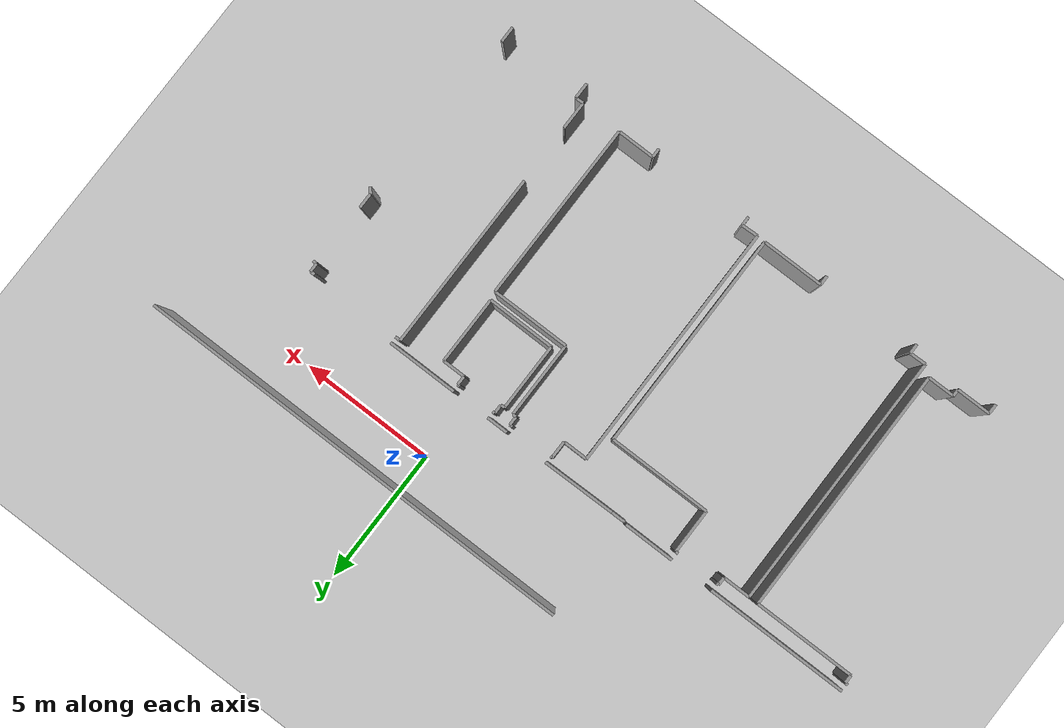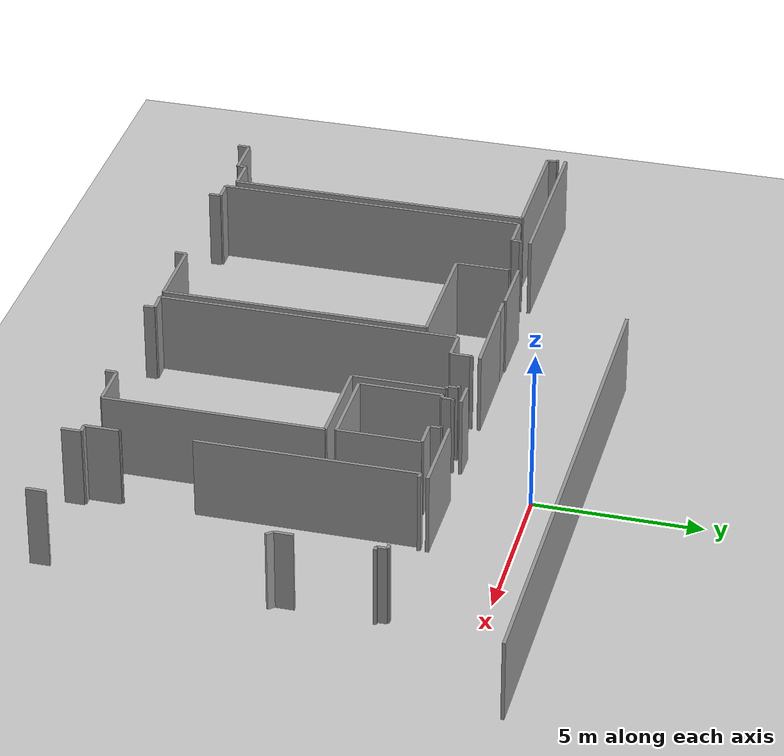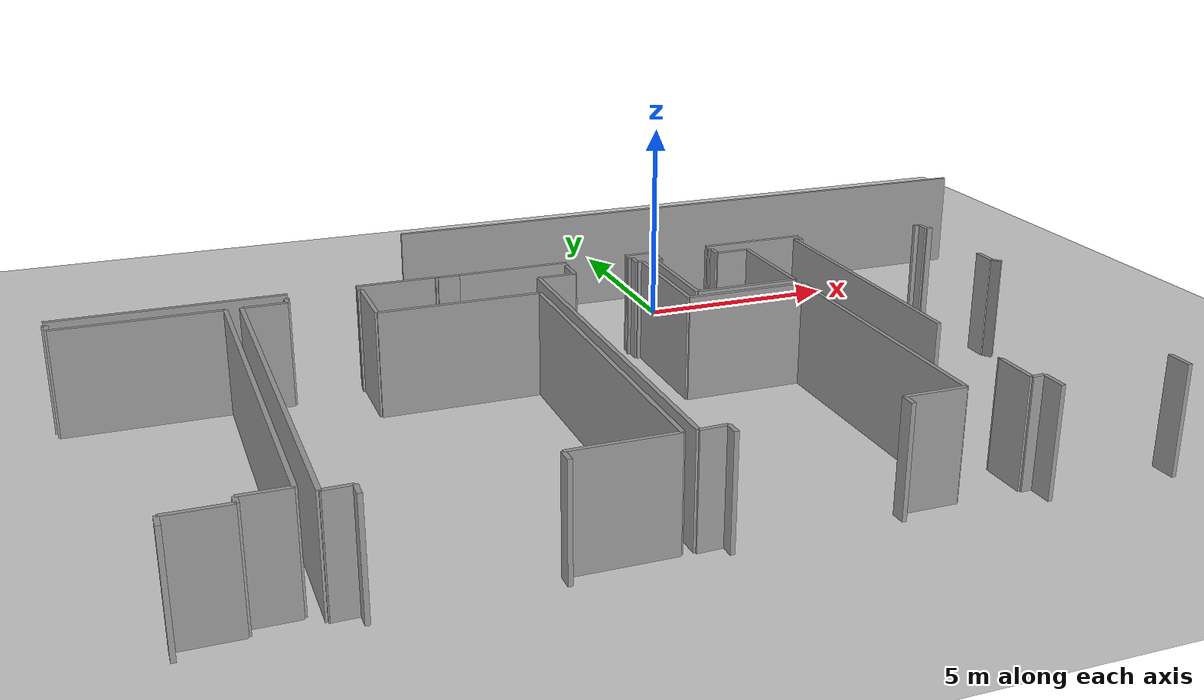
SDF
<sdf version="1.6">
 <world name="default">
  <model name="ground_plane">
   <static>1</static>
   <link name="link">
    <collision name="collision">
     <geometry><plane><normal>0 0 1</normal><size>100 100</size></plane></geometry>
     <surface><friction><ode><mu>100</mu><mu2>50</mu2></ode></friction></surface>
    </collision>
    <visual name="visual">
     <cast_shadows>0</cast_shadows>
     <geometry><plane><normal>0 0 1</normal><size>100 100</size></plane></geometry>
     <material>
      <script><uri>file://media/materials/scripts/gazebo.material</uri><name>Gazebo/Grey</name></script>
     </material>
    </visual>
   </link>
  </model>
  <model name="50045369">
   <static>1</static>
   <link name="Wall_47">
    <collision name="Wall_47_Collision">
     <geometry><box><size>0.101680912586 0.1 2.5</size></box></geometry>
     <pose>0.0508404562931 0 1.25 0 0 0</pose>
    </collision>
    <visual name="Wall_47_Visual">
     <pose>0.0508404562931 0 1.25 0 0 0</pose>
     <geometry><box><size>0.101680912586 0.1 2.5</size></box></geometry>
     <material>
      <script><uri>file://media/materials/scripts/gazebo.material</uri><name>Gazebo/Grey</name></script>
      <ambient>1 1 1 1</ambient>
     </material>
    </visual>
    <pose>30.6575577516 -24.4909917067 0 0 0 0.0</pose>
   </link>
   <link name="Wall_48">
    <collision name="Wall_48_Collision">
     <geometry><box><size>0.295383051063 0.1 2.5</size></box></geometry>
     <pose>0.147691525531 0 1.25 0 0 0</pose>
    </collision>
    <visual name="Wall_48_Visual">
     <pose>0.147691525531 0 1.25 0 0 0</pose>
     <geometry><box><size>0.295383051063 0.1 2.5</size></box></geometry>
     <material>
      <script><uri>file://media/materials/scripts/gazebo.material</uri><name>Gazebo/Grey</name></script>
      <ambient>1 1 1 1</ambient>
     </material>
    </visual>
    <pose>30.7592386642 -24.4909917067 0 0 0 -1.57079632679</pose>
   </link>
   <link name="Wall_49">
    <collision name="Wall_49_Collision">
     <geometry><box><size>3.72279241206 0.1 2.5</size></box></geometry>
     <pose>1.86139620603 0 1.25 0 0 0</pose>
    </collision>
    <visual name="Wall_49_Visual">
     <pose>1.86139620603 0 1.25 0 0 0</pose>
     <geometry><box><size>3.72279241206 0.1 2.5</size></box></geometry>
     <material>
      <script><uri>file://media/materials/scripts/gazebo.material</uri><name>Gazebo/Grey</name></script>
      <ambient>1 1 1 1</ambient>
     </material>
    </visual>
    <pose>30.7592386642 -24.7863747577 0 0 0 0.0</pose>
   </link>
   <link name="Wall_50">
    <collision name="Wall_50_Collision">
     <geometry><box><size>9.14225795177 0.1 2.5</size></box></geometry>
     <pose>4.57112897588 0 1.25 0 0 0</pose>
    </collision>
    <visual name="Wall_50_Visual">
     <pose>4.57112897588 0 1.25 0 0 0</pose>
     <geometry><box><size>9.14225795177 0.1 2.5</size></box></geometry>
     <material>
      <script><uri>file://media/materials/scripts/gazebo.material</uri><name>Gazebo/Grey</name></script>
      <ambient>1 1 1 1</ambient>
     </material>
    </visual>
    <pose>34.4820310762 -24.7863747577 0 0 0 -1.57079632679</pose>
   </link>
   <link name="Wall_51">
    <collision name="Wall_51_Collision">
     <geometry><box><size>0.972323726605 0.1 2.5</size></box></geometry>
     <pose>0.486161863303 0 1.25 0 0 0</pose>
    </collision>
    <visual name="Wall_51_Visual">
     <pose>0.486161863303 0 1.25 0 0 0</pose>
     <geometry><box><size>0.972323726605 0.1 2.5</size></box></geometry>
     <material>
      <script><uri>file://media/materials/scripts/gazebo.material</uri><name>Gazebo/Grey</name></script>
      <ambient>1 1 1 1</ambient>
     </material>
    </visual>
    <pose>34.4820310762 -33.9286327095 0 0 0 3.14159265359</pose>
   </link>
   <link name="Wall_52">
    <collision name="Wall_52_Collision">
     <geometry><box><size>0.254202281465 0.1 2.5</size></box></geometry>
     <pose>0.127101140733 0 1.25 0 0 0</pose>
    </collision>
    <visual name="Wall_52_Visual">
     <pose>0.127101140733 0 1.25 0 0 0</pose>
     <geometry><box><size>0.254202281465 0.1 2.5</size></box></geometry>
     <material>
      <script><uri>file://media/materials/scripts/gazebo.material</uri><name>Gazebo/Grey</name></script>
      <ambient>1 1 1 1</ambient>
     </material>
    </visual>
    <pose>33.5097073496 -33.9286327095 0 0 0 -1.57079632679</pose>
   </link>
   <link name="Wall_53">
    <collision name="Wall_53_Collision">
     <geometry><box><size>1.25067522481 0.1 2.5</size></box></geometry>
     <pose>0.625337612405 0 1.25 0 0 0</pose>
    </collision>
    <visual name="Wall_53_Visual">
     <pose>0.625337612405 0 1.25 0 0 0</pose>
     <geometry><box><size>1.25067522481 0.1 2.5</size></box></geometry>
     <material>
      <script><uri>file://media/materials/scripts/gazebo.material</uri><name>Gazebo/Grey</name></script>
      <ambient>1 1 1 1</ambient>
     </material>
    </visual>
    <pose>33.5097073496 -34.1828349909 0 0 0 3.14159265359</pose>
   </link>
   <link name="Wall_54">
    <collision name="Wall_54_Collision">
     <geometry><box><size>0.361475644244 0.1 2.5</size></box></geometry>
     <pose>0.180737822122 0 1.25 0 0 0</pose>
    </collision>
    <visual name="Wall_54_Visual">
     <pose>0.180737822122 0 1.25 0 0 0</pose>
     <geometry><box><size>0.361475644244 0.1 2.5</size></box></geometry>
     <material>
      <script><uri>file://media/materials/scripts/gazebo.material</uri><name>Gazebo/Grey</name></script>
      <ambient>1 1 1 1</ambient>
     </material>
    </visual>
    <pose>32.2590321248 -34.1828349909 0 0 0 -1.57079632679</pose>
   </link>
   <link name="Wall_57">
    <collision name="Wall_57_Collision">
     <geometry><box><size>0.0258015315687 0.1 2.5</size></box></geometry>
     <pose>0.0129007657844 0 1.25 0 0 0</pose>
    </collision>
    <visual name="Wall_57_Visual">
     <pose>0.0129007657844 0 1.25 0 0 0</pose>
     <geometry><box><size>0.0258015315687 0.1 2.5</size></box></geometry>
     <material>
      <script><uri>file://media/materials/scripts/gazebo.material</uri><name>Gazebo/Grey</name></script>
      <ambient>1 1 1 1</ambient>
     </material>
    </visual>
    <pose>34.8578691494 -34.1983413301 0 0 0 3.14159265359</pose>
   </link>
   <link name="Wall_58">
    <collision name="Wall_58_Collision">
     <geometry><box><size>9.41082266213 0.1 2.5</size></box></geometry>
     <pose>4.70541133107 0 1.25 0 0 0</pose>
    </collision>
    <visual name="Wall_58_Visual">
     <pose>4.70541133107 0 1.25 0 0 0</pose>
     <geometry><box><size>9.41082266213 0.1 2.5</size></box></geometry>
     <material>
      <script><uri>file://media/materials/scripts/gazebo.material</uri><name>Gazebo/Grey</name></script>
      <ambient>1 1 1 1</ambient>
     </material>
    </visual>
    <pose>34.8320676178 -34.1983413301 0 0 0 1.57079632679</pose>
   </link>
   <link name="Wall_59">
    <collision name="Wall_59_Collision">
     <geometry><box><size>1.01414000191 0.1 2.5</size></box></geometry>
     <pose>0.507070000953 0 1.25 0 0 0</pose>
    </collision>
    <visual name="Wall_59_Visual">
     <pose>0.507070000953 0 1.25 0 0 0</pose>
     <geometry><box><size>1.01414000191 0.1 2.5</size></box></geometry>
     <material>
      <script><uri>file://media/materials/scripts/gazebo.material</uri><name>Gazebo/Grey</name></script>
      <ambient>1 1 1 1</ambient>
     </material>
    </visual>
    <pose>34.8320676178 -24.787518668 0 0 0 0.0</pose>
   </link>
   <link name="Wall_60">
    <collision name="Wall_60_Collision">
     <geometry><box><size>0.285723364367 0.1 2.5</size></box></geometry>
     <pose>0.142861682184 0 1.25 0 0 0</pose>
    </collision>
    <visual name="Wall_60_Visual">
     <pose>0.142861682184 0 1.25 0 0 0</pose>
     <geometry><box><size>0.285723364367 0.1 2.5</size></box></geometry>
     <material>
      <script><uri>file://media/materials/scripts/gazebo.material</uri><name>Gazebo/Grey</name></script>
      <ambient>1 1 1 1</ambient>
     </material>
    </visual>
    <pose>35.8462076197 -24.787518668 0 0 0 1.57079632679</pose>
   </link>
   <link name="Wall_61">
    <collision name="Wall_61_Collision">
     <geometry><box><size>0.0733373582028 0.1 2.5</size></box></geometry>
     <pose>0.0366686791014 0 1.25 0 0 0</pose>
    </collision>
    <visual name="Wall_61_Visual">
     <pose>0.0366686791014 0 1.25 0 0 0</pose>
     <geometry><box><size>0.0733373582028 0.1 2.5</size></box></geometry>
     <material>
      <script><uri>file://media/materials/scripts/gazebo.material</uri><name>Gazebo/Grey</name></script>
      <ambient>1 1 1 1</ambient>
     </material>
    </visual>
    <pose>35.8462076197 -24.5017953036 0 0 0 0.0</pose>
   </link>
   <link name="Wall_62">
    <collision name="Wall_62_Collision">
     <geometry><box><size>0.0996472943345 0.1 2.5</size></box></geometry>
     <pose>0.0498236471672 0 1.25 0 0 0</pose>
    </collision>
    <visual name="Wall_62_Visual">
     <pose>0.0498236471672 0 1.25 0 0 0</pose>
     <geometry><box><size>0.0996472943345 0.1 2.5</size></box></geometry>
     <material>
      <script><uri>file://media/materials/scripts/gazebo.material</uri><name>Gazebo/Grey</name></script>
      <ambient>1 1 1 1</ambient>
     </material>
    </visual>
    <pose>37.4736106257 -24.5017953036 0 0 0 0.0</pose>
   </link>
   <link name="Wall_63">
    <collision name="Wall_63_Collision">
     <geometry><box><size>1.62549648883 0.1 2.5</size></box></geometry>
     <pose>0.812748244415 0 1.25 0 0 0</pose>
    </collision>
    <visual name="Wall_63_Visual">
     <pose>0.812748244415 0 1.25 0 0 0</pose>
     <geometry><box><size>1.62549648883 0.1 2.5</size></box></geometry>
     <material>
      <script><uri>file://media/materials/scripts/gazebo.material</uri><name>Gazebo/Grey</name></script>
      <ambient>1 1 1 1</ambient>
     </material>
    </visual>
    <pose>37.57325792 -24.5017953036 0 0 0 -1.57079632679</pose>
   </link>
   <link name="Wall_64">
    <collision name="Wall_64_Collision">
     <geometry><box><size>3.77414127292 0.1 2.5</size></box></geometry>
     <pose>1.88707063646 0 1.25 0 0 0</pose>
    </collision>
    <visual name="Wall_64_Visual">
     <pose>1.88707063646 0 1.25 0 0 0</pose>
     <geometry><box><size>3.77414127292 0.1 2.5</size></box></geometry>
     <material>
      <script><uri>file://media/materials/scripts/gazebo.material</uri><name>Gazebo/Grey</name></script>
      <ambient>1 1 1 1</ambient>
     </material>
    </visual>
    <pose>37.57325792 -26.1272917924 0 0 0 0.0</pose>
   </link>
   <link name="Wall_65">
    <collision name="Wall_65_Collision">
     <geometry><box><size>8.07104953767 0.1 2.5</size></box></geometry>
     <pose>4.03552476883 0 1.25 0 0 0</pose>
    </collision>
    <visual name="Wall_65_Visual">
     <pose>4.03552476883 0 1.25 0 0 0</pose>
     <geometry><box><size>8.07104953767 0.1 2.5</size></box></geometry>
     <material>
      <script><uri>file://media/materials/scripts/gazebo.material</uri><name>Gazebo/Grey</name></script>
      <ambient>1 1 1 1</ambient>
     </material>
    </visual>
    <pose>41.3473991929 -26.1272917924 0 0 0 -1.57079632679</pose>
   </link>
   <link name="Wall_66">
    <collision name="Wall_66_Collision">
     <geometry><box><size>2.27015347463 0.1 2.5</size></box></geometry>
     <pose>1.13507673731 0 1.25 0 0 0</pose>
    </collision>
    <visual name="Wall_66_Visual">
     <pose>1.13507673731 0 1.25 0 0 0</pose>
     <geometry><box><size>2.27015347463 0.1 2.5</size></box></geometry>
     <material>
      <script><uri>file://media/materials/scripts/gazebo.material</uri><name>Gazebo/Grey</name></script>
      <ambient>1 1 1 1</ambient>
     </material>
    </visual>
    <pose>41.3473991929 -34.1983413301 0 0 0 3.14159265359</pose>
   </link>
   <link name="Wall_67">
    <collision name="Wall_67_Collision">
     <geometry><box><size>0.347494518763 0.1 2.5</size></box></geometry>
     <pose>0.173747259382 0 1.25 0 0 0</pose>
    </collision>
    <visual name="Wall_67_Visual">
     <pose>0.173747259382 0 1.25 0 0 0</pose>
     <geometry><box><size>0.347494518763 0.1 2.5</size></box></geometry>
     <material>
      <script><uri>file://media/materials/scripts/gazebo.material</uri><name>Gazebo/Grey</name></script>
      <ambient>1 1 1 1</ambient>
     </material>
    </visual>
    <pose>39.0772457183 -34.1983413301 0 0 0 -1.57079632679</pose>
   </link>
   <link name="Wall_68">
    <collision name="Wall_68_Collision">
     <geometry><box><size>0.358171014585 0.1 2.5</size></box></geometry>
     <pose>0.179085507292 0 1.25 0 0 0</pose>
    </collision>
    <visual name="Wall_68_Visual">
     <pose>0.179085507292 0 1.25 0 0 0</pose>
     <geometry><box><size>0.358171014585 0.1 2.5</size></box></geometry>
     <material>
      <script><uri>file://media/materials/scripts/gazebo.material</uri><name>Gazebo/Grey</name></script>
      <ambient>1 1 1 1</ambient>
     </material>
    </visual>
    <pose>35.4416446888 -34.5458358489 0 0 0 1.57079632679</pose>
   </link>
   <link name="Wall_69">
    <collision name="Wall_69_Collision">
     <geometry><box><size>0.583873160839 0.1 2.5</size></box></geometry>
     <pose>0.291936580419 0 1.25 0 0 0</pose>
    </collision>
    <visual name="Wall_69_Visual">
     <pose>0.291936580419 0 1.25 0 0 0</pose>
     <geometry><box><size>0.583873160839 0.1 2.5</size></box></geometry>
     <material>
      <script><uri>file://media/materials/scripts/gazebo.material</uri><name>Gazebo/Grey</name></script>
      <ambient>1 1 1 1</ambient>
     </material>
    </visual>
    <pose>35.4416446888 -34.1876648343 0 0 0 -3.12330599203</pose>
   </link>
   <link name="Wall_70">
    <collision name="Wall_70_Collision">
     <geometry><box><size>9.10806774491 0.1 2.5</size></box></geometry>
     <pose>4.55403387245 0 1.25 0 0 0</pose>
    </collision>
    <visual name="Wall_70_Visual">
     <pose>4.55403387245 0 1.25 0 0 0</pose>
     <geometry><box><size>9.10806774491 0.1 2.5</size></box></geometry>
     <material>
      <script><uri>file://media/materials/scripts/gazebo.material</uri><name>Gazebo/Grey</name></script>
      <ambient>1 1 1 1</ambient>
     </material>
    </visual>
    <pose>41.6490101999 -34.2128308602 0 0 0 1.57079632679</pose>
   </link>
   <link name="Wall_71">
    <collision name="Wall_71_Collision">
     <geometry><box><size>0.90381621175 0.1 2.5</size></box></geometry>
     <pose>0.451908105875 0 1.25 0 0 0</pose>
    </collision>
    <visual name="Wall_71_Visual">
     <pose>0.451908105875 0 1.25 0 0 0</pose>
     <geometry><box><size>0.90381621175 0.1 2.5</size></box></geometry>
     <material>
      <script><uri>file://media/materials/scripts/gazebo.material</uri><name>Gazebo/Grey</name></script>
      <ambient>1 1 1 1</ambient>
     </material>
    </visual>
    <pose>41.6490101999 -25.1047631152 0 0 0 0.0</pose>
   </link>
   <link name="Wall_72">
    <collision name="Wall_72_Collision">
     <geometry><box><size>0.634488894538 0.1 2.5</size></box></geometry>
     <pose>0.317244447269 0 1.25 0 0 0</pose>
    </collision>
    <visual name="Wall_72_Visual">
     <pose>0.317244447269 0 1.25 0 0 0</pose>
     <geometry><box><size>0.634488894538 0.1 2.5</size></box></geometry>
     <material>
      <script><uri>file://media/materials/scripts/gazebo.material</uri><name>Gazebo/Grey</name></script>
      <ambient>1 1 1 1</ambient>
     </material>
    </visual>
    <pose>42.5528264116 -25.1047631152 0 0 0 1.57079632679</pose>
   </link>
   <link name="Wall_73">
    <collision name="Wall_73_Collision">
     <geometry><box><size>0.068507514855 0.1 2.5</size></box></geometry>
     <pose>0.0342537574275 0 1.25 0 0 0</pose>
    </collision>
    <visual name="Wall_73_Visual">
     <pose>0.0342537574275 0 1.25 0 0 0</pose>
     <geometry><box><size>0.068507514855 0.1 2.5</size></box></geometry>
     <material>
      <script><uri>file://media/materials/scripts/gazebo.material</uri><name>Gazebo/Grey</name></script>
      <ambient>1 1 1 1</ambient>
     </material>
    </visual>
    <pose>42.5528264116 -24.4702742207 0 0 0 0.0</pose>
   </link>
   <link name="Wall_74">
    <collision name="Wall_74_Collision">
     <geometry><box><size>0.109815385593 0.1 2.5</size></box></geometry>
     <pose>0.0549076927965 0 1.25 0 0 0</pose>
    </collision>
    <visual name="Wall_74_Visual">
     <pose>0.0549076927965 0 1.25 0 0 0</pose>
     <geometry><box><size>0.109815385593 0.1 2.5</size></box></geometry>
     <material>
      <script><uri>file://media/materials/scripts/gazebo.material</uri><name>Gazebo/Grey</name></script>
      <ambient>1 1 1 1</ambient>
     </material>
    </visual>
    <pose>44.1630707636 -24.4702742207 0 0 0 0.0</pose>
   </link>
   <link name="Wall_75">
    <collision name="Wall_75_Collision">
     <geometry><box><size>0.330590067046 0.1 2.5</size></box></geometry>
     <pose>0.165295033523 0 1.25 0 0 0</pose>
    </collision>
    <visual name="Wall_75_Visual">
     <pose>0.165295033523 0 1.25 0 0 0</pose>
     <geometry><box><size>0.330590067046 0.1 2.5</size></box></geometry>
     <material>
      <script><uri>file://media/materials/scripts/gazebo.material</uri><name>Gazebo/Grey</name></script>
      <ambient>1 1 1 1</ambient>
     </material>
    </visual>
    <pose>44.2728861492 -24.4702742207 0 0 0 -1.57079632679</pose>
   </link>
   <link name="Wall_76">
    <collision name="Wall_76_Collision">
     <geometry><box><size>0.133710400051 0.1 2.5</size></box></geometry>
     <pose>0.0668552000254 0 1.25 0 0 0</pose>
    </collision>
    <visual name="Wall_76_Visual">
     <pose>0.0668552000254 0 1.25 0 0 0</pose>
     <geometry><box><size>0.133710400051 0.1 2.5</size></box></geometry>
     <material>
      <script><uri>file://media/materials/scripts/gazebo.material</uri><name>Gazebo/Grey</name></script>
      <ambient>1 1 1 1</ambient>
     </material>
    </visual>
    <pose>44.2728861492 -24.8008642878 0 0 0 0.0</pose>
   </link>
   <link name="Wall_77">
    <collision name="Wall_77_Collision">
     <geometry><box><size>2.79393727559 0.1 2.5</size></box></geometry>
     <pose>1.39696863779 0 1.25 0 0 0</pose>
    </collision>
    <visual name="Wall_77_Visual">
     <pose>1.39696863779 0 1.25 0 0 0</pose>
     <geometry><box><size>2.79393727559 0.1 2.5</size></box></geometry>
     <material>
      <script><uri>file://media/materials/scripts/gazebo.material</uri><name>Gazebo/Grey</name></script>
      <ambient>1 1 1 1</ambient>
     </material>
    </visual>
    <pose>44.4065965492 -24.8008642878 0 0 0 -1.57079632679</pose>
   </link>
   <link name="Wall_78">
    <collision name="Wall_78_Collision">
     <geometry><box><size>2.88557719806 0.1 2.5</size></box></geometry>
     <pose>1.44278859903 0 1.25 0 0 0</pose>
    </collision>
    <visual name="Wall_78_Visual">
     <pose>1.44278859903 0 1.25 0 0 0</pose>
     <geometry><box><size>2.88557719806 0.1 2.5</size></box></geometry>
     <material>
      <script><uri>file://media/materials/scripts/gazebo.material</uri><name>Gazebo/Grey</name></script>
      <ambient>1 1 1 1</ambient>
     </material>
    </visual>
    <pose>44.4065965492 -27.5948015633 0 0 0 0.0</pose>
   </link>
   <link name="Wall_79">
    <collision name="Wall_79_Collision">
     <geometry><box><size>6.59807441772 0.1 2.5</size></box></geometry>
     <pose>3.29903720886 0 1.25 0 0 0</pose>
    </collision>
    <visual name="Wall_79_Visual">
     <pose>3.29903720886 0 1.25 0 0 0</pose>
     <geometry><box><size>6.59807441772 0.1 2.5</size></box></geometry>
     <material>
      <script><uri>file://media/materials/scripts/gazebo.material</uri><name>Gazebo/Grey</name></script>
      <ambient>1 1 1 1</ambient>
     </material>
    </visual>
    <pose>47.2921737473 -27.5948015633 0 0 0 -1.57079632679</pose>
   </link>
   <link name="Wall_80">
    <collision name="Wall_80_Collision">
     <geometry><box><size>1.37548854501 0.1 2.5</size></box></geometry>
     <pose>0.687744272505 0 1.25 0 0 0</pose>
    </collision>
    <visual name="Wall_80_Visual">
     <pose>0.687744272505 0 1.25 0 0 0</pose>
     <geometry><box><size>1.37548854501 0.1 2.5</size></box></geometry>
     <material>
      <script><uri>file://media/materials/scripts/gazebo.material</uri><name>Gazebo/Grey</name></script>
      <ambient>1 1 1 1</ambient>
     </material>
    </visual>
    <pose>47.2921737473 -34.1928759811 0 0 0 3.14159265359</pose>
   </link>
   <link name="Wall_81">
    <collision name="Wall_81_Collision">
     <geometry><box><size>0.334403101268 0.1 2.5</size></box></geometry>
     <pose>0.167201550634 0 1.25 0 0 0</pose>
    </collision>
    <visual name="Wall_81_Visual">
     <pose>0.167201550634 0 1.25 0 0 0</pose>
     <geometry><box><size>0.334403101268 0.1 2.5</size></box></geometry>
     <material>
      <script><uri>file://media/materials/scripts/gazebo.material</uri><name>Gazebo/Grey</name></script>
      <ambient>1 1 1 1</ambient>
     </material>
    </visual>
    <pose>45.9166852022 -34.1928759811 0 0 0 -1.57079632679</pose>
   </link>
   <link name="Wall_82">
    <collision name="Wall_82_Collision">
     <geometry><box><size>0.339232944616 0.1 2.5</size></box></geometry>
     <pose>0.169616472308 0 1.25 0 0 0</pose>
    </collision>
    <visual name="Wall_82_Visual">
     <pose>0.169616472308 0 1.25 0 0 0</pose>
     <geometry><box><size>0.339232944616 0.1 2.5</size></box></geometry>
     <material>
      <script><uri>file://media/materials/scripts/gazebo.material</uri><name>Gazebo/Grey</name></script>
      <ambient>1 1 1 1</ambient>
     </material>
    </visual>
    <pose>42.2565536526 -34.5272790823 0 0 0 1.57079632679</pose>
   </link>
   <link name="Wall_83">
    <collision name="Wall_83_Collision">
     <geometry><box><size>0.608048788658 0.1 2.5</size></box></geometry>
     <pose>0.304024394329 0 1.25 0 0 0</pose>
    </collision>
    <visual name="Wall_83_Visual">
     <pose>0.304024394329 0 1.25 0 0 0</pose>
     <geometry><box><size>0.608048788658 0.1 2.5</size></box></geometry>
     <material>
      <script><uri>file://media/materials/scripts/gazebo.material</uri><name>Gazebo/Grey</name></script>
      <ambient>1 1 1 1</ambient>
     </material>
    </visual>
    <pose>42.2565536526 -34.1880461377 0 0 0 -3.10082028269</pose>
   </link>
   <link name="Wall_84">
    <collision name="Wall_84_Collision">
     <geometry><box><size>2.47643862604 0.1 2.5</size></box></geometry>
     <pose>1.23821931302 0 1.25 0 0 0</pose>
    </collision>
    <visual name="Wall_84_Visual">
     <pose>1.23821931302 0 1.25 0 0 0</pose>
     <geometry><box><size>2.47643862604 0.1 2.5</size></box></geometry>
     <material>
      <script><uri>file://media/materials/scripts/gazebo.material</uri><name>Gazebo/Grey</name></script>
      <ambient>1 1 1 1</ambient>
     </material>
    </visual>
    <pose>44.7483715166 -27.2800991389 0 0 0 1.57079632679</pose>
   </link>
   <link name="Wall_85">
    <collision name="Wall_85_Collision">
     <geometry><box><size>0.140955165073 0.1 2.5</size></box></geometry>
     <pose>0.0704775825363 0 1.25 0 0 0</pose>
    </collision>
    <visual name="Wall_85_Visual">
     <pose>0.0704775825363 0 1.25 0 0 0</pose>
     <geometry><box><size>0.140955165073 0.1 2.5</size></box></geometry>
     <material>
      <script><uri>file://media/materials/scripts/gazebo.material</uri><name>Gazebo/Grey</name></script>
      <ambient>1 1 1 1</ambient>
     </material>
    </visual>
    <pose>44.7483715166 -24.8036605129 0 0 0 0.0</pose>
   </link>
   <link name="Wall_86">
    <collision name="Wall_86_Collision">
     <geometry><box><size>0.334403101268 0.1 2.5</size></box></geometry>
     <pose>0.167201550634 0 1.25 0 0 0</pose>
    </collision>
    <visual name="Wall_86_Visual">
     <pose>0.167201550634 0 1.25 0 0 0</pose>
     <geometry><box><size>0.334403101268 0.1 2.5</size></box></geometry>
     <material>
      <script><uri>file://media/materials/scripts/gazebo.material</uri><name>Gazebo/Grey</name></script>
      <ambient>1 1 1 1</ambient>
     </material>
    </visual>
    <pose>44.8893266817 -24.8036605129 0 0 0 1.57079632679</pose>
   </link>
   <link name="Wall_87">
    <collision name="Wall_87_Collision">
     <geometry><box><size>0.0860474722761 0.1 2.5</size></box></geometry>
     <pose>0.043023736138 0 1.25 0 0 0</pose>
    </collision>
    <visual name="Wall_87_Visual">
     <pose>0.043023736138 0 1.25 0 0 0</pose>
     <geometry><box><size>0.0860474722761 0.1 2.5</size></box></geometry>
     <material>
      <script><uri>file://media/materials/scripts/gazebo.material</uri><name>Gazebo/Grey</name></script>
      <ambient>1 1 1 1</ambient>
     </material>
    </visual>
    <pose>44.8893266817 -24.4692574116 0 0 0 0.0</pose>
   </link>
   <link name="Wall_88">
    <collision name="Wall_88_Collision">
     <geometry><box><size>0.0871913825427 0.1 2.5</size></box></geometry>
     <pose>0.0435956912713 0 1.25 0 0 0</pose>
    </collision>
    <visual name="Wall_88_Visual">
     <pose>0.0435956912713 0 1.25 0 0 0</pose>
     <geometry><box><size>0.0871913825427 0.1 2.5</size></box></geometry>
     <material>
      <script><uri>file://media/materials/scripts/gazebo.material</uri><name>Gazebo/Grey</name></script>
      <ambient>1 1 1 1</ambient>
     </material>
    </visual>
    <pose>46.3112071431 -24.4692574116 0 0 0 0.0</pose>
   </link>
   <link name="Wall_89">
    <collision name="Wall_89_Collision">
     <geometry><box><size>0.335928314957 0.1 2.5</size></box></geometry>
     <pose>0.167964157478 0 1.25 0 0 0</pose>
    </collision>
    <visual name="Wall_89_Visual">
     <pose>0.167964157478 0 1.25 0 0 0</pose>
     <geometry><box><size>0.335928314957 0.1 2.5</size></box></geometry>
     <material>
      <script><uri>file://media/materials/scripts/gazebo.material</uri><name>Gazebo/Grey</name></script>
      <ambient>1 1 1 1</ambient>
     </material>
    </visual>
    <pose>46.3983985256 -24.4692574116 0 0 0 -1.57079632679</pose>
   </link>
   <link name="Wall_90">
    <collision name="Wall_90_Collision">
     <geometry><box><size>0.830987258111 0.1 2.5</size></box></geometry>
     <pose>0.415493629055 0 1.25 0 0 0</pose>
    </collision>
    <visual name="Wall_90_Visual">
     <pose>0.415493629055 0 1.25 0 0 0</pose>
     <geometry><box><size>0.830987258111 0.1 2.5</size></box></geometry>
     <material>
      <script><uri>file://media/materials/scripts/gazebo.material</uri><name>Gazebo/Grey</name></script>
      <ambient>1 1 1 1</ambient>
     </material>
    </visual>
    <pose>46.3983985256 -24.8051857265 0 0 0 0.0</pose>
   </link>
   <link name="Wall_91">
    <collision name="Wall_91_Collision">
     <geometry><box><size>2.48622541387 0.1 2.5</size></box></geometry>
     <pose>1.24311270694 0 1.25 0 0 0</pose>
    </collision>
    <visual name="Wall_91_Visual">
     <pose>1.24311270694 0 1.25 0 0 0</pose>
     <geometry><box><size>2.48622541387 0.1 2.5</size></box></geometry>
     <material>
      <script><uri>file://media/materials/scripts/gazebo.material</uri><name>Gazebo/Grey</name></script>
      <ambient>1 1 1 1</ambient>
     </material>
    </visual>
    <pose>47.2293857837 -24.8051857265 0 0 0 -1.57079632679</pose>
   </link>
   <link name="Wall_92">
    <collision name="Wall_92_Collision">
     <geometry><box><size>2.48104005509 0.1 2.5</size></box></geometry>
     <pose>1.24052002754 0 1.25 0 0 0</pose>
    </collision>
    <visual name="Wall_92_Visual">
     <pose>1.24052002754 0 1.25 0 0 0</pose>
     <geometry><box><size>2.48104005509 0.1 2.5</size></box></geometry>
     <material>
      <script><uri>file://media/materials/scripts/gazebo.material</uri><name>Gazebo/Grey</name></script>
      <ambient>1 1 1 1</ambient>
     </material>
    </visual>
    <pose>47.2293857837 -27.2914111404 0 0 0 3.13703325895</pose>
   </link>
   <link name="Wall_93">
    <collision name="Wall_93_Collision">
     <geometry><box><size>1.02697721712 0.1 2.5</size></box></geometry>
     <pose>0.51348860856 0 1.25 0 0 0</pose>
    </collision>
    <visual name="Wall_93_Visual">
     <pose>0.51348860856 0 1.25 0 0 0</pose>
     <geometry><box><size>1.02697721712 0.1 2.5</size></box></geometry>
     <material>
      <script><uri>file://media/materials/scripts/gazebo.material</uri><name>Gazebo/Grey</name></script>
      <ambient>1 1 1 1</ambient>
     </material>
    </visual>
    <pose>48.7859934543 -34.2212195354 0 0 0 1.57079632679</pose>
   </link>
   <link name="Wall_94">
    <collision name="Wall_94_Collision">
     <geometry><box><size>0.0406723650345 0.1 2.5</size></box></geometry>
     <pose>0.0203361825172 0 1.25 0 0 0</pose>
    </collision>
    <visual name="Wall_94_Visual">
     <pose>0.0203361825172 0 1.25 0 0 0</pose>
     <geometry><box><size>0.0406723650345 0.1 2.5</size></box></geometry>
     <material>
      <script><uri>file://media/materials/scripts/gazebo.material</uri><name>Gazebo/Grey</name></script>
      <ambient>1 1 1 1</ambient>
     </material>
    </visual>
    <pose>48.7859934543 -33.1942423183 0 0 0 3.14159265359</pose>
   </link>
   <link name="Wall_95">
    <collision name="Wall_95_Collision">
     <geometry><box><size>6.56973086333 0.1 2.5</size></box></geometry>
     <pose>3.28486543167 0 1.25 0 0 0</pose>
    </collision>
    <visual name="Wall_95_Visual">
     <pose>3.28486543167 0 1.25 0 0 0</pose>
     <geometry><box><size>6.56973086333 0.1 2.5</size></box></geometry>
     <material>
      <script><uri>file://media/materials/scripts/gazebo.material</uri><name>Gazebo/Grey</name></script>
      <ambient>1 1 1 1</ambient>
     </material>
    </visual>
    <pose>48.7453210893 -31.0332687236 0 0 0 1.57079632679</pose>
   </link>
   <link name="Wall_96">
    <collision name="Wall_96_Collision">
     <geometry><box><size>0.196371262432 0.1 2.5</size></box></geometry>
     <pose>0.098185631216 0 1.25 0 0 0</pose>
    </collision>
    <visual name="Wall_96_Visual">
     <pose>0.098185631216 0 1.25 0 0 0</pose>
     <geometry><box><size>0.196371262432 0.1 2.5</size></box></geometry>
     <material>
      <script><uri>file://media/materials/scripts/gazebo.material</uri><name>Gazebo/Grey</name></script>
      <ambient>1 1 1 1</ambient>
     </material>
    </visual>
    <pose>48.7453210893 -24.4635378603 0 0 0 0.0</pose>
   </link>
   <link name="Wall_97">
    <collision name="Wall_97_Collision">
     <geometry><box><size>0.170696832004 0.1 2.5</size></box></geometry>
     <pose>0.085348416002 0 1.25 0 0 0</pose>
    </collision>
    <visual name="Wall_97_Visual">
     <pose>0.085348416002 0 1.25 0 0 0</pose>
     <geometry><box><size>0.170696832004 0.1 2.5</size></box></geometry>
     <material>
      <script><uri>file://media/materials/scripts/gazebo.material</uri><name>Gazebo/Grey</name></script>
      <ambient>1 1 1 1</ambient>
     </material>
    </visual>
    <pose>52.2526770678 -24.4635378603 0 0 0 0.0</pose>
   </link>
   <link name="Wall_98">
    <collision name="Wall_98_Collision">
     <geometry><box><size>0.31915096438 0.1 2.5</size></box></geometry>
     <pose>0.15957548219 0 1.25 0 0 0</pose>
    </collision>
    <visual name="Wall_98_Visual">
     <pose>0.15957548219 0 1.25 0 0 0</pose>
     <geometry><box><size>0.31915096438 0.1 2.5</size></box></geometry>
     <material>
      <script><uri>file://media/materials/scripts/gazebo.material</uri><name>Gazebo/Grey</name></script>
      <ambient>1 1 1 1</ambient>
     </material>
    </visual>
    <pose>52.4233738998 -24.4635378603 0 0 0 -1.57079632679</pose>
   </link>
   <link name="Wall_99">
    <collision name="Wall_99_Collision">
     <geometry><box><size>0.151631660894 0.1 2.5</size></box></geometry>
     <pose>0.0758158304471 0 1.25 0 0 0</pose>
    </collision>
    <visual name="Wall_99_Visual">
     <pose>0.0758158304471 0 1.25 0 0 0</pose>
     <geometry><box><size>0.151631660894 0.1 2.5</size></box></geometry>
     <material>
      <script><uri>file://media/materials/scripts/gazebo.material</uri><name>Gazebo/Grey</name></script>
      <ambient>1 1 1 1</ambient>
     </material>
    </visual>
    <pose>52.4233738998 -24.7826888246 0 0 0 0.0</pose>
   </link>
   <link name="Wall_103">
    <collision name="Wall_103_Collision">
     <geometry><box><size>0.560007626068 0.1 2.5</size></box></geometry>
     <pose>0.280003813034 0 1.25 0 0 0</pose>
    </collision>
    <visual name="Wall_103_Visual">
     <pose>0.280003813034 0 1.25 0 0 0</pose>
     <geometry><box><size>0.560007626068 0.1 2.5</size></box></geometry>
     <material>
      <script><uri>file://media/materials/scripts/gazebo.material</uri><name>Gazebo/Grey</name></script>
      <ambient>1 1 1 1</ambient>
     </material>
    </visual>
    <pose>52.4420577675 -27.0790251343 0 0 0 -1.57079632679</pose>
   </link>
   <link name="Wall_104">
    <collision name="Wall_104_Collision">
     <geometry><box><size>0.242139815788 0.1 2.5</size></box></geometry>
     <pose>0.121069907894 0 1.25 0 0 0</pose>
    </collision>
    <visual name="Wall_104_Visual">
     <pose>0.121069907894 0 1.25 0 0 0</pose>
     <geometry><box><size>0.242139815788 0.1 2.5</size></box></geometry>
     <material>
      <script><uri>file://media/materials/scripts/gazebo.material</uri><name>Gazebo/Grey</name></script>
      <ambient>1 1 1 1</ambient>
     </material>
    </visual>
    <pose>52.4420577675 -27.6390327603 0 0 0 -0.858583187791</pose>
   </link>
   <link name="Wall_125">
    <collision name="Wall_125_Collision">
     <geometry><box><size>0.586444663341 0.1 2.5</size></box></geometry>
     <pose>0.29322233167 0 1.25 0 0 0</pose>
    </collision>
    <visual name="Wall_125_Visual">
     <pose>0.29322233167 0 1.25 0 0 0</pose>
     <geometry><box><size>0.586444663341 0.1 2.5</size></box></geometry>
     <material>
      <script><uri>file://media/materials/scripts/gazebo.material</uri><name>Gazebo/Grey</name></script>
      <ambient>1 1 1 1</ambient>
     </material>
    </visual>
    <pose>52.136379524 -34.2114327476 0 0 0 -1.57079632679</pose>
   </link>
   <link name="Wall_126">
    <collision name="Wall_126_Collision">
     <geometry><box><size>0.585427854215 0.1 2.5</size></box></geometry>
     <pose>0.292713927107 0 1.25 0 0 0</pose>
    </collision>
    <visual name="Wall_126_Visual">
     <pose>0.292713927107 0 1.25 0 0 0</pose>
     <geometry><box><size>0.585427854215 0.1 2.5</size></box></geometry>
     <material>
      <script><uri>file://media/materials/scripts/gazebo.material</uri><name>Gazebo/Grey</name></script>
      <ambient>1 1 1 1</ambient>
     </material>
    </visual>
    <pose>49.0850624384 -34.7978774109 0 0 0 1.57079632679</pose>
   </link>
   <link name="Wall_127">
    <collision name="Wall_127_Collision">
     <geometry><box><size>0.299197543111 0.1 2.5</size></box></geometry>
     <pose>0.149598771555 0 1.25 0 0 0</pose>
    </collision>
    <visual name="Wall_127_Visual">
     <pose>0.149598771555 0 1.25 0 0 0</pose>
     <geometry><box><size>0.299197543111 0.1 2.5</size></box></geometry>
     <material>
      <script><uri>file://media/materials/scripts/gazebo.material</uri><name>Gazebo/Grey</name></script>
      <ambient>1 1 1 1</ambient>
     </material>
    </visual>
    <pose>49.0850624384 -34.2124495567 0 0 0 -3.1122767878</pose>
   </link>
   <link name="Wall_220">
    <collision name="Wall_220_Collision">
     <geometry><box><size>0.518191350767 0.1 2.5</size></box></geometry>
     <pose>0.259095675384 0 1.25 0 0 0</pose>
    </collision>
    <visual name="Wall_220_Visual">
     <pose>0.259095675384 0 1.25 0 0 0</pose>
     <geometry><box><size>0.518191350767 0.1 2.5</size></box></geometry>
     <material>
      <script><uri>file://media/materials/scripts/gazebo.material</uri><name>Gazebo/Grey</name></script>
      <ambient>1 1 1 1</ambient>
     </material>
    </visual>
    <pose>39.9556417019 -24.2519144609 0 0 0 3.14159265359</pose>
   </link>
   <link name="Wall_221">
    <collision name="Wall_221_Collision">
     <geometry><box><size>0.0316481840425 0.1 2.5</size></box></geometry>
     <pose>0.0158240920212 0 1.25 0 0 0</pose>
    </collision>
    <visual name="Wall_221_Visual">
     <pose>0.0158240920212 0 1.25 0 0 0</pose>
     <geometry><box><size>0.0316481840425 0.1 2.5</size></box></geometry>
     <material>
      <script><uri>file://media/materials/scripts/gazebo.material</uri><name>Gazebo/Grey</name></script>
      <ambient>1 1 1 1</ambient>
     </material>
    </visual>
    <pose>39.4374503511 -24.2519144609 0 0 0 1.57079632679</pose>
   </link>
   <link name="Wall_222">
    <collision name="Wall_222_Collision">
     <geometry><box><size>16.3284293477 0.1 2.5</size></box></geometry>
     <pose>8.16421467383 0 1.25 0 0 0</pose>
    </collision>
    <visual name="Wall_222_Visual">
     <pose>8.16421467383 0 1.25 0 0 0</pose>
     <geometry><box><size>16.3284293477 0.1 2.5</size></box></geometry>
     <material>
      <script><uri>file://media/materials/scripts/gazebo.material</uri><name>Gazebo/Grey</name></script>
      <ambient>1 1 1 1</ambient>
     </material>
    </visual>
    <pose>39.4374503511 -20.5089129675 0 0 0 0.0</pose>
   </link>
   <link name="Wall_234">
    <collision name="Wall_234_Collision">
     <geometry><box><size>2.59578659718 0.1 2.5</size></box></geometry>
     <pose>1.29789329859 0 1.25 0 0 0</pose>
    </collision>
    <visual name="Wall_234_Visual">
     <pose>1.29789329859 0 1.25 0 0 0</pose>
     <geometry><box><size>2.59578659718 0.1 2.5</size></box></geometry>
     <material>
      <script><uri>file://media/materials/scripts/gazebo.material</uri><name>Gazebo/Grey</name></script>
      <ambient>1 1 1 1</ambient>
     </material>
    </visual>
    <pose>48.9527501509 -24.2216643894 0 0 0 3.14159265359</pose>
   </link>
   <link name="Wall_235">
    <collision name="Wall_235_Collision">
     <geometry><box><size>0.788408375965 0.1 2.5</size></box></geometry>
     <pose>0.394204187983 0 1.25 0 0 0</pose>
    </collision>
    <visual name="Wall_235_Visual">
     <pose>0.394204187983 0 1.25 0 0 0</pose>
     <geometry><box><size>0.788408375965 0.1 2.5</size></box></geometry>
     <material>
      <script><uri>file://media/materials/scripts/gazebo.material</uri><name>Gazebo/Grey</name></script>
      <ambient>1 1 1 1</ambient>
     </material>
    </visual>
    <pose>44.9849067395 -24.2216643894 0 0 0 3.14159265359</pose>
   </link>
   <link name="Wall_236">
    <collision name="Wall_236_Collision">
     <geometry><box><size>2.67857315647 0.1 2.5</size></box></geometry>
     <pose>1.33928657824 0 1.25 0 0 0</pose>
    </collision>
    <visual name="Wall_236_Visual">
     <pose>1.33928657824 0 1.25 0 0 0</pose>
     <geometry><box><size>2.67857315647 0.1 2.5</size></box></geometry>
     <material>
      <script><uri>file://media/materials/scripts/gazebo.material</uri><name>Gazebo/Grey</name></script>
      <ambient>1 1 1 1</ambient>
     </material>
    </visual>
    <pose>42.6340440405 -24.2216643894 0 0 0 -3.13029906078</pose>
   </link>
   <link name="Wall_247">
    <collision name="Wall_247_Collision">
     <geometry><box><size>1.85580375584 0.1 2.5</size></box></geometry>
     <pose>0.927901877919 0 1.25 0 0 0</pose>
    </collision>
    <visual name="Wall_247_Visual">
     <pose>0.927901877919 0 1.25 0 0 0</pose>
     <geometry><box><size>1.85580375584 0.1 2.5</size></box></geometry>
     <material>
      <script><uri>file://media/materials/scripts/gazebo.material</uri><name>Gazebo/Grey</name></script>
      <ambient>1 1 1 1</ambient>
     </material>
    </visual>
    <pose>39.3615709701 -24.2161990404 0 0 0 3.14159265359</pose>
   </link>
   <link name="Wall_248">
    <collision name="Wall_248_Collision">
     <geometry><box><size>5.24038003241 0.1 2.5</size></box></geometry>
     <pose>2.62019001621 0 1.25 0 0 0</pose>
    </collision>
    <visual name="Wall_248_Visual">
     <pose>2.62019001621 0 1.25 0 0 0</pose>
     <geometry><box><size>5.24038003241 0.1 2.5</size></box></geometry>
     <material>
      <script><uri>file://media/materials/scripts/gazebo.material</uri><name>Gazebo/Grey</name></script>
      <ambient>1 1 1 1</ambient>
     </material>
    </visual>
    <pose>35.9253916304 -24.2161990404 0 0 0 3.14159265359</pose>
   </link>
   <pose>-45.95 21.8978774109 0 0 0 0</pose>
  </model>
 </world>
</sdf>
